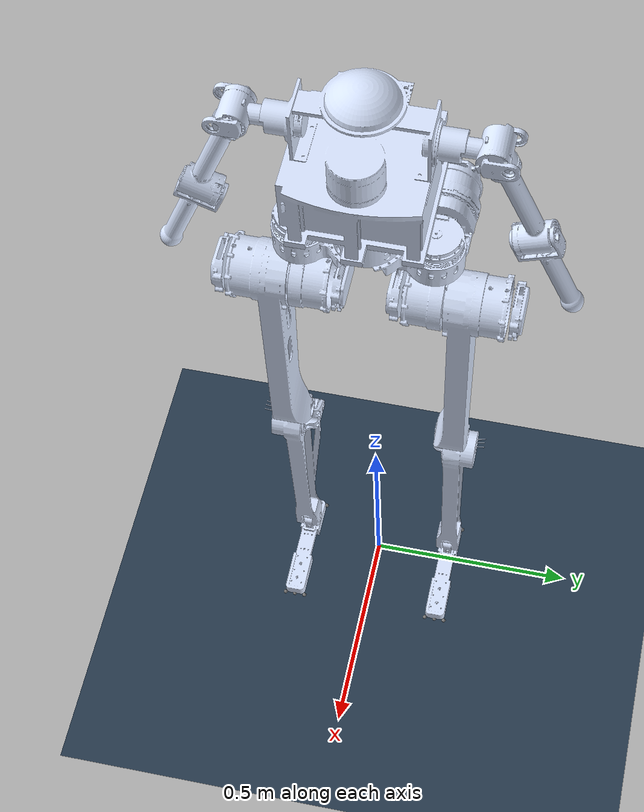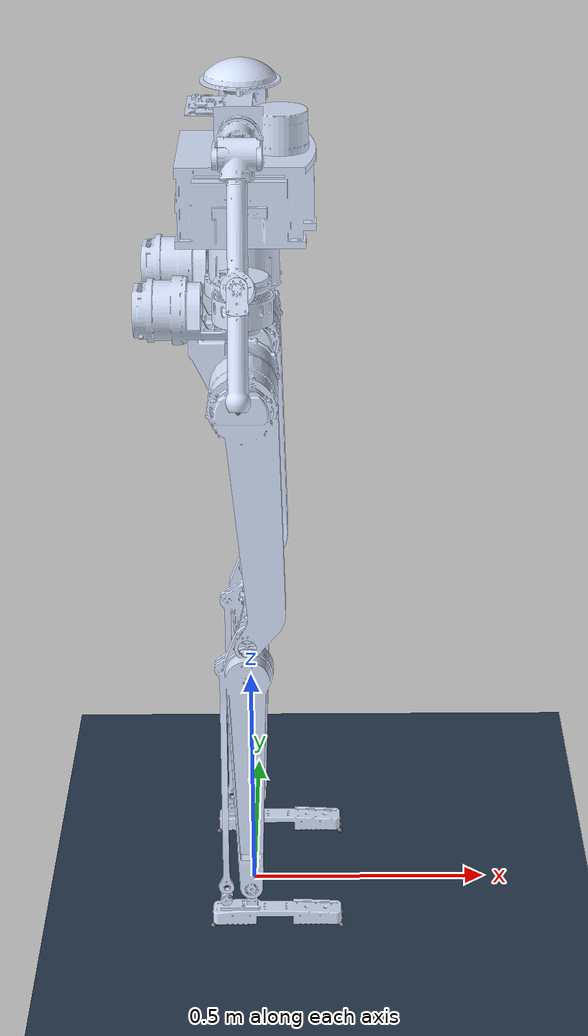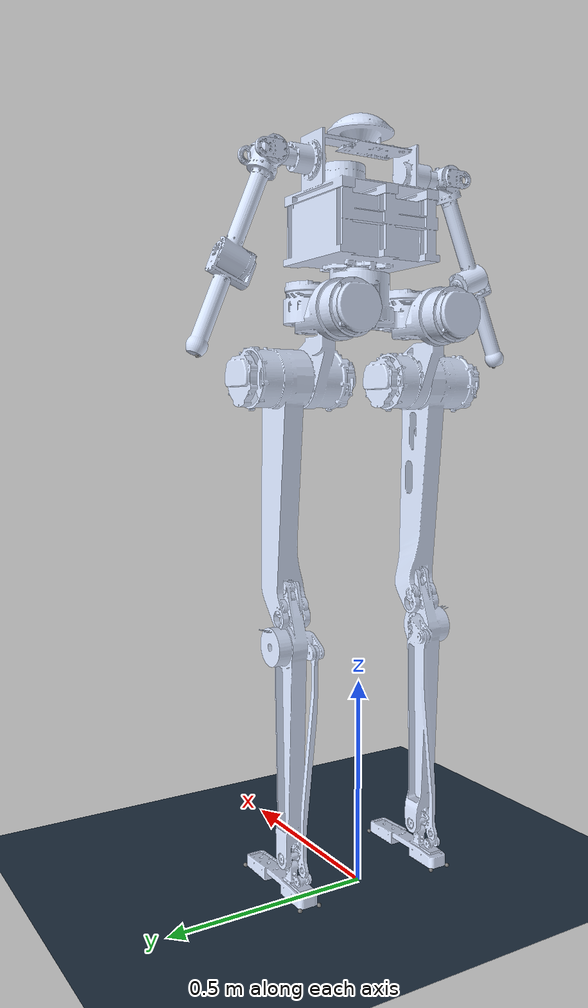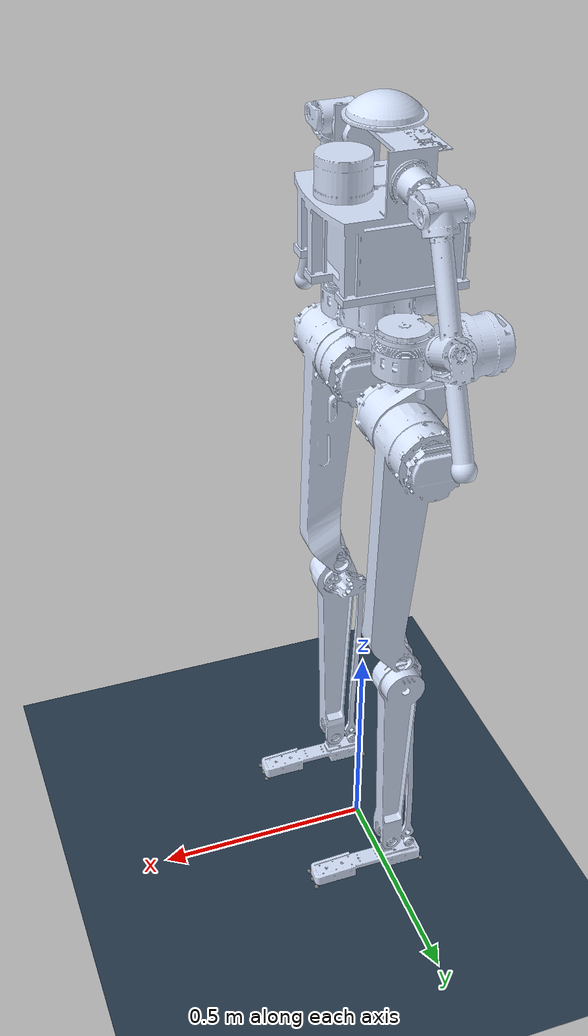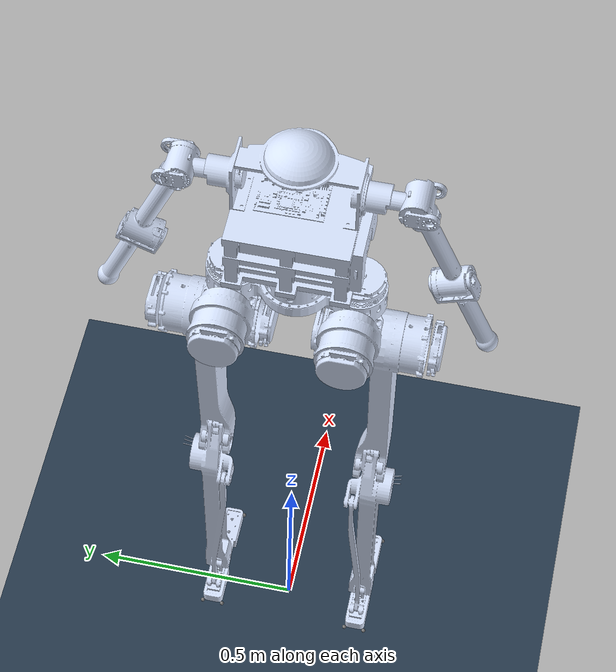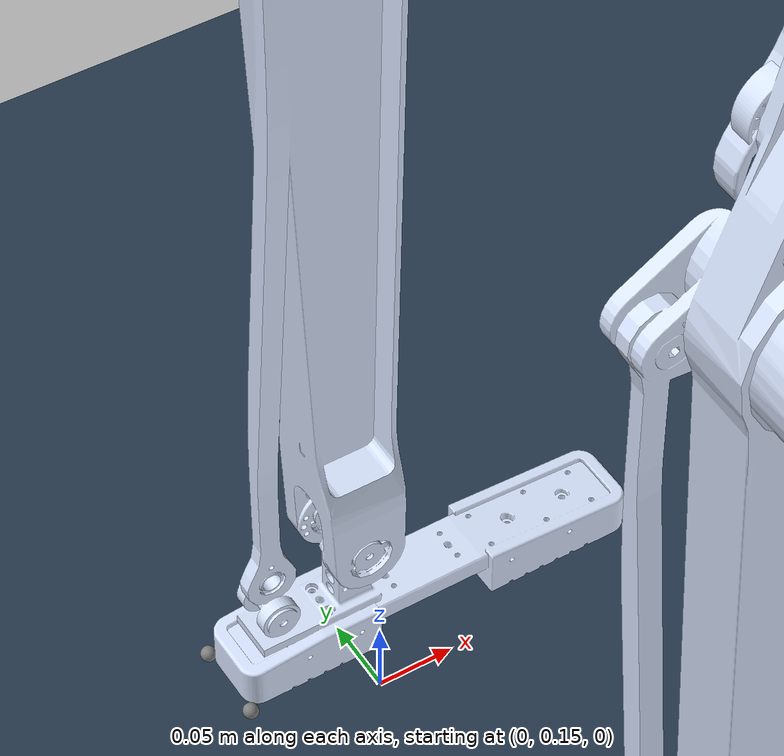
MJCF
<?xml version='1.0' encoding='utf-8'?>
<mujoco model="noetix_m5_a">
  <compiler angle="radian" meshdir="/home/noetix/Desktop/new_home/learning_based/wbc/open_src/omni_retarget/holosoma/src/holosoma_retargeting/holosoma_retargeting/models/noetix_m5_a/meshes" />
  <default>
    <joint damping="0.001" armature="0.005" frictionloss="0.1" />
  </default>
  <asset>
    <mesh name="base_link" file="base_link.STL" />
    <mesh name="l_arm_elbow_link" file="l_arm_elbow_link.STL" />
    <mesh name="l_arm_shoulder_pitch_link" file="l_arm_shoulder_pitch_link.STL" />
    <mesh name="l_arm_shoulder_roll_link" file="l_arm_shoulder_roll_link.STL" />
    <mesh name="l_leg_ankle_pitch_link" file="l_leg_ankle_pitch_link.STL" />
    <mesh name="l_leg_hip_pitch_link" file="l_leg_hip_pitch_link.STL" />
    <mesh name="l_leg_hip_roll_link" file="l_leg_hip_roll_link.STL" />
    <mesh name="l_leg_hip_yaw_link" file="l_leg_hip_yaw_link.STL" />
    <mesh name="l_leg_knee_link" file="l_leg_knee_link.STL" />
    <mesh name="r_arm_elbow_link" file="r_arm_elbow_link.STL" />
    <mesh name="r_arm_shoulder_pitch_link" file="r_arm_shoulder_pitch_link.STL" />
    <mesh name="r_arm_shoulder_roll_link" file="r_arm_shoulder_roll_link.STL" />
    <mesh name="r_leg_ankle_pitch_link" file="r_leg_ankle_pitch_link.STL" />
    <mesh name="r_leg_hip_pitch_link" file="r_leg_hip_pitch_link.STL" />
    <mesh name="r_leg_hip_roll_link" file="r_leg_hip_roll_link.STL" />
    <mesh name="r_leg_hip_yaw_link" file="r_leg_hip_yaw_link.STL" />
    <mesh name="r_leg_knee_link" file="r_leg_knee_link.STL" />
    <mesh name="waist_yaw_link" file="waist_yaw_link.STL" />
    <texture type="skybox" builtin="gradient" rgb1="0.3 0.5 0.7" rgb2="0 0 0" width="512" height="512" />
    <texture name="texplane" type="2d" builtin="checker" rgb1=".2 .3 .4" rgb2=".1 0.15 0.2" width="512" height="512" mark="cross" markrgb=".8 .8 .8" />
    <material name="matplane" reflectance="0." texture="texplane" texrepeat="1 1" texuniform="true" />
  </asset>

  <worldbody>

    <light directional="true" diffuse=".4 .4 .4" specular="0.1 0.1 0.1" pos="0 0 5.0" dir="0 0 -1" castshadow="false" />
    <light directional="true" diffuse=".6 .6 .6" specular="0.2 0.2 0.2" pos="0 0 4" dir="0 0 -1" />
    <geom name="ground" type="plane" size="0 0 1" pos="0.001 0 0" quat="1 0 0 0" material="matplane" condim="1" conaffinity="15" />

    <body name="base_link" pos="0 0 1.35">
      <inertial pos="-0.00057 0 0.04651" quat="0.705713 0.705695 0.0445169 -0.0445136" mass="8.53282" diaginertia="0.108047 0.106581 0.020298" />
      <geom type="mesh" contype="0" conaffinity="0" group="1" density="0" rgba="0.85 0.9 1 1" mesh="base_link" />
      <freejoint name="root" />
      <site name="imu" size="0.01" pos="0 0 0" />
      <body name="l_leg_hip_yaw_link" pos="-7.1878e-05 0.13499 0.0005">
        <inertial pos="-0.12936 -2e-05 0.00801" quat="0.00519581 0.805172 0.000962212 0.593018" mass="3.345" diaginertia="0.0107604 0.0103464 0.00798589" />
      <geom type="mesh" contype="0" conaffinity="0" group="1" density="0" rgba="0.85 0.9 1 1" mesh="l_leg_hip_yaw_link" />
        <joint name="l_leg_hip_yaw_joint" pos="0 0 0" axis="0 0 1" range="-0.4 0.61" actuatorfrcrange="-200 200" />
        <body name="l_leg_hip_roll_link" pos="-0.10593 0 0.0105">
          <inertial pos="0.09673 -0.01647 -0.13432" quat="0.69855 -0.298925 -0.176854 0.625615" mass="4.71715" diaginertia="0.0200111 0.0187845 0.0110154" />
      <geom type="mesh" contype="0" conaffinity="0" group="1" density="0" rgba="0.85 0.9 1 1" mesh="l_leg_hip_roll_link" />
          <joint name="l_leg_hip_roll_joint" pos="0 0 0" axis="1 0 0" range="-0.244 0.4" actuatorfrcrange="-400 400" />
          <body name="l_leg_hip_pitch_link" pos="0.106 0 -0.145">
            <inertial pos="0.00505 0.09377 -0.06612" quat="0.993506 -0.0719802 -0.0280031 0.0835539" mass="6.08098" diaginertia="0.137943 0.137373 0.0155959" />
      <geom type="mesh" contype="0" conaffinity="0" group="1" density="0" rgba="0.85 0.9 1 1" mesh="l_leg_hip_pitch_link" />
            <joint name="l_leg_hip_pitch_joint" pos="0 0 0" axis="0 1 0" range="-1.91 1.57" actuatorfrcrange="-600 600" />
            <body name="l_leg_knee_link" pos="0 0.0524 -0.516">
              <inertial pos="-0.0082 0.00701 -0.18514" quat="0.470968 0.0069976 0.0157934 0.881981" mass="3.71052" diaginertia="0.144462 0.142784 0.00509284" />
      <geom type="mesh" contype="0" conaffinity="0" group="1" density="0" rgba="0.85 0.9 1 1" mesh="l_leg_knee_link" />
              <joint name="l_leg_knee_joint" pos="0 0 0" axis="0 1 0" range="0 2.44" actuatorfrcrange="-600 600" />
              <body name="l_leg_ankle_pitch_link" pos="0 0 -0.617">
                <inertial pos="0.0275 0.00019 -0.03856" quat="0.492858 0.505915 0.535744 0.46273" mass="0.66086" diaginertia="0.00388785 0.00384628 0.000231474" />
      <geom type="mesh" contype="0" conaffinity="0" group="1" density="0" rgba="0.85 0.9 1 1" mesh="l_leg_ankle_pitch_link" />
                <joint name="l_leg_ankle_pitch_joint" pos="0 0 0" axis="0 1 0" range="-0.95 0.61" actuatorfrcrange="-120 120" />
              <body name="l_leg_ankle_pitch_sphere_1_link" pos="-0.082037508 0.025200658 -0.066500001"><geom name="l_leg_ankle_pitch_sphere_1_link" type="sphere" size="0.005" contype="0" conaffinity="0" density="0" group="1" /></body><body name="l_leg_ankle_pitch_sphere_2_link" pos="-0.082037508 -0.025200665 -0.066500001"><geom name="l_leg_ankle_pitch_sphere_2_link" type="sphere" size="0.005" contype="0" conaffinity="0" density="0" group="1" /></body><body name="l_leg_ankle_pitch_sphere_3_link" pos="0.18836248 0.025200658 -0.066500001"><geom name="l_leg_ankle_pitch_sphere_3_link" type="sphere" size="0.005" contype="0" conaffinity="0" density="0" group="1" /></body><body name="l_leg_ankle_pitch_sphere_4_link" pos="0.18836248 -0.025200665 -0.066500001"><geom name="l_leg_ankle_pitch_sphere_4_link" type="sphere" size="0.005" contype="0" conaffinity="0" density="0" group="1" /></body><body name="l_leg_ankle_pitch_sphere_5_link" pos="0.18836248 -3.7252903e-09 -0.066500001"><geom name="l_leg_ankle_pitch_sphere_5_link" type="sphere" size="0.005" contype="0" conaffinity="0" density="0" group="1" /></body></body>
            </body>
          </body>
        </body>
      </body>
      <body name="r_leg_hip_yaw_link" pos="-7.1878e-05 -0.13501 0.0005">
        <inertial pos="-0.12938 4e-05 0.00804" quat="-0.00491886 0.805187 -0.00205326 0.592997" mass="3.345" diaginertia="0.0107502 0.0103409 0.00798883" />
      <geom type="mesh" contype="0" conaffinity="0" group="1" density="0" rgba="0.85 0.9 1 1" mesh="r_leg_hip_yaw_link" />
        <joint name="r_leg_hip_yaw_joint" pos="0 0 0" axis="0 0 1" range="-0.61 0.4" actuatorfrcrange="-200 200" />
        <body name="r_leg_hip_roll_link" pos="-0.10593 0 0.0105">
          <inertial pos="0.09673 0.01647 -0.13432" quat="0.637791 -0.172283 -0.300248 0.688035" mass="4.71713" diaginertia="0.0199966 0.0187576 0.011056" />
      <geom type="mesh" contype="0" conaffinity="0" group="1" density="0" rgba="0.85 0.9 1 1" mesh="r_leg_hip_roll_link" />
          <joint name="r_leg_hip_roll_joint" pos="0 0 0" axis="1 0 0" range="-0.4 0.244" actuatorfrcrange="-400 400" />
          <body name="r_leg_hip_pitch_link" pos="0.106 0 -0.145">
            <inertial pos="0.00505 -0.0934 -0.06612" quat="0.996509 0.070146 -0.0317652 -0.0322648" mass="6.08097" diaginertia="0.137866 0.137359 0.0155534" />
      <geom type="mesh" contype="0" conaffinity="0" group="1" density="0" rgba="0.85 0.9 1 1" mesh="r_leg_hip_pitch_link" />
            <joint name="r_leg_hip_pitch_joint" pos="0 0 0" axis="0 1 0" range="-1.91 1.57" actuatorfrcrange="-600 600" />
            <body name="r_leg_knee_link" pos="0 -0.0524 -0.516">
              <inertial pos="-0.00863 -0.00615 -0.18513" quat="0.873893 0.0146159 0.00678782 0.485851" mass="3.71052" diaginertia="0.144346 0.142715 0.00497304" />
      <geom type="mesh" contype="0" conaffinity="0" group="1" density="0" rgba="0.85 0.9 1 1" mesh="r_leg_knee_link" />
              <joint name="r_leg_knee_joint" pos="0 0 0" axis="0 1 0" range="0 2.44" actuatorfrcrange="-600 600" />
              <body name="r_leg_ankle_pitch_link" pos="0 0 -0.617">
                <inertial pos="0.0275 0.00019 -0.03856" quat="0.492858 0.505915 0.535744 0.46273" mass="0.66086" diaginertia="0.00388785 0.00384628 0.000231474" />
      <geom type="mesh" contype="0" conaffinity="0" group="1" density="0" rgba="0.85 0.9 1 1" mesh="r_leg_ankle_pitch_link" />
                <joint name="r_leg_ankle_pitch_joint" pos="0 0 0" axis="0 1 0" range="-0.95 0.61" actuatorfrcrange="-120 120" />
              <body name="r_leg_ankle_pitch_sphere_1_link" pos="-0.082037508 0.025200658 -0.066500001"><geom name="r_leg_ankle_pitch_sphere_1_link" type="sphere" size="0.005" contype="0" conaffinity="0" density="0" group="1" /></body><body name="r_leg_ankle_pitch_sphere_2_link" pos="-0.082037508 -0.025200665 -0.066500001"><geom name="r_leg_ankle_pitch_sphere_2_link" type="sphere" size="0.005" contype="0" conaffinity="0" density="0" group="1" /></body><body name="r_leg_ankle_pitch_sphere_3_link" pos="0.18836248 0.025200658 -0.066500001"><geom name="r_leg_ankle_pitch_sphere_3_link" type="sphere" size="0.005" contype="0" conaffinity="0" density="0" group="1" /></body><body name="r_leg_ankle_pitch_sphere_4_link" pos="0.18836248 -0.025200665 -0.066500001"><geom name="r_leg_ankle_pitch_sphere_4_link" type="sphere" size="0.005" contype="0" conaffinity="0" density="0" group="1" /></body><body name="r_leg_ankle_pitch_sphere_5_link" pos="0.18836248 -3.7252903e-09 -0.066500001"><geom name="r_leg_ankle_pitch_sphere_5_link" type="sphere" size="0.005" contype="0" conaffinity="0" density="0" group="1" /></body></body>
            </body>
          </body>
        </body>
      </body>
      <body name="waist_yaw_link" pos="0 0 0.1085">
        <inertial pos="0.00279 -0.00971 0.1303" quat="0.664946 0.734868 0.0917213 -0.0969661" mass="15.6125" diaginertia="0.236811 0.207383 0.164756" />
      <geom type="mesh" contype="0" conaffinity="0" group="1" density="0" rgba="0.85 0.9 1 1" mesh="waist_yaw_link" />
        <joint name="waist_yaw_joint" pos="0 0 0" axis="0 0 1" range="-1.57 1.57" actuatorfrcrange="-300 300" />
        <body name="l_arm_shoulder_pitch_link" pos="-0.0021 0.1745 0.239">
          <inertial pos="0.00549 0.03754 -0.00019" quat="-0.0584913 0.704625 0.0482076 0.70552" mass="0.14381" diaginertia="0.000252574 0.000195755 0.000102383" />
      <geom type="mesh" contype="0" conaffinity="0" group="1" density="0" rgba="0.85 0.9 1 1" mesh="l_arm_shoulder_pitch_link" />
          <joint name="l_arm_shoulder_pitch_joint" pos="0 0 0" axis="0 1 0" range="-1.74 1.74" actuatorfrcrange="-70 70" />
          <body name="l_arm_shoulder_roll_link" pos="0 0.065 0">
            <inertial pos="-0.00368 0.04584 -0.11087" quat="0.879233 0.165671 -0.100408 0.435224" mass="1.41738" diaginertia="0.0193874 0.0193705 0.00101948" />
      <geom type="mesh" contype="0" conaffinity="0" group="1" density="0" rgba="0.85 0.9 1 1" mesh="l_arm_shoulder_roll_link" />
            <joint name="l_arm_shoulder_roll_joint" pos="0 0 0" axis="1 0 0" range="-0.54 1.17" actuatorfrcrange="-70 70" />
            <body name="l_arm_elbow_link" pos="0 0.09612 -0.22644" quat="0.979924 0.19937 0 0">
              <inertial pos="-1e-05 -0.01094 -0.07639" quat="0.998974 0.0452868 -2.84419e-05 -0.000217171" mass="0.22316" diaginertia="0.00139518 0.00125602 0.00019685" />
      <geom type="mesh" contype="0" conaffinity="0" group="1" density="0" rgba="0.85 0.9 1 1" mesh="l_arm_elbow_link" />
              <joint name="l_arm_elbow_joint" pos="0 0 0" axis="0 1 0" range="-2.18 0.087" actuatorfrcrange="-70 70" />
            <body name="l_arm_hand_sphere_link" pos="0 -0.012500001 -0.2230002"><geom name="l_arm_hand_sphere_link" type="sphere" size="0.005" contype="0" conaffinity="0" density="0" group="1" /></body></body>
          </body>
        </body>
        <body name="r_arm_shoulder_pitch_link" pos="-0.0021 -0.1743 0.239">
          <inertial pos="0.00549 -0.03754 -0.00019" quat="0.0585036 0.704624 -0.0481985 0.705521" mass="0.1438" diaginertia="0.000252576 0.000195752 0.000102379" />
      <geom type="mesh" contype="0" conaffinity="0" group="1" density="0" rgba="0.85 0.9 1 1" mesh="r_arm_shoulder_pitch_link" />
          <joint name="r_arm_shoulder_pitch_joint" pos="0 0 0" axis="0 1 0" range="-1.74 1.74" actuatorfrcrange="-70 70" />
          <body name="r_arm_shoulder_roll_link" pos="0 -0.065 0">
            <inertial pos="0.00368 -0.04584 -0.11087" quat="0.879233 -0.165671 0.100408 0.435224" mass="1.41738" diaginertia="0.0193874 0.0193705 0.00101948" />
      <geom type="mesh" contype="0" conaffinity="0" group="1" density="0" rgba="0.85 0.9 1 1" mesh="r_arm_shoulder_roll_link" />
            <joint name="r_arm_shoulder_roll_joint" pos="0 0 0" axis="1 0 0" range="-1.17 0.54" actuatorfrcrange="-70 70" />
            <body name="r_arm_elbow_link" pos="0 -0.09612 -0.22644" quat="0.979924 -0.19937 0 0">
              <inertial pos="-1e-05 0.01094 -0.07639" quat="0.998974 -0.0452868 -2.84419e-05 0.000217171" mass="0.22316" diaginertia="0.00139518 0.00125602 0.00019685" />
      <geom type="mesh" contype="0" conaffinity="0" group="1" density="0" rgba="0.85 0.9 1 1" mesh="r_arm_elbow_link" />
              <joint name="r_arm_elbow_joint" pos="0 0 0" axis="0 1 0" range="-2.18 0.087" actuatorfrcrange="-70 70" />
            <body name="r_arm_hand_sphere_link" pos="1.8626451e-09 0.012500001 -0.2230002"><geom name="r_arm_hand_sphere_link" type="sphere" size="0.005" contype="0" conaffinity="0" density="0" group="1" /></body></body>
          </body>
        </body>
      </body>
    </body>
  </worldbody>
  <actuator>
    <motor name="l_leg_hip_yaw" joint="l_leg_hip_yaw_joint" />
    <motor name="l_leg_hip_roll" joint="l_leg_hip_roll_joint" />
    <motor name="l_leg_hip_pitch" joint="l_leg_hip_pitch_joint" />
    <motor name="l_leg_knee" joint="l_leg_knee_joint" />
    <motor name="l_leg_ankle_pitch" joint="l_leg_ankle_pitch_joint" />
    <motor name="r_leg_hip_yaw" joint="r_leg_hip_yaw_joint" />
    <motor name="r_leg_hip_roll" joint="r_leg_hip_roll_joint" />
    <motor name="r_leg_hip_pitch" joint="r_leg_hip_pitch_joint" />
    <motor name="r_leg_knee" joint="r_leg_knee_joint" />
    <motor name="r_leg_ankle_pitch" joint="r_leg_ankle_pitch_joint" />
    <motor name="waist_yaw" joint="waist_yaw_joint" />
    <motor name="l_arm_shoulder_pitch" joint="l_arm_shoulder_pitch_joint" />
    <motor name="l_arm_shoulder_roll" joint="l_arm_shoulder_roll_joint" />
    <motor name="l_arm_elbow" joint="l_arm_elbow_joint" />
    <motor name="r_arm_shoulder_pitch" joint="r_arm_shoulder_pitch_joint" />
    <motor name="r_arm_shoulder_roll" joint="r_arm_shoulder_roll_joint" />
    <motor name="r_arm_elbow" joint="r_arm_elbow_joint" />
  </actuator>
  <sensor>
      <framequat name="orientation" objtype="site" noise="0.001" objname="imu" />
      <framepos name="position" objtype="site" noise="0.001" objname="imu" />
      <gyro name="angular-velocity" site="imu" noise="0.005" cutoff="34.9" />
      <velocimeter name="linear-velocity" site="imu" noise="0.001" cutoff="30" />
      <accelerometer name="linear-acceleration" site="imu" noise="0.005" cutoff="157" />
      <magnetometer name="magnetometer" site="imu" />
  </sensor>
</mujoco>
